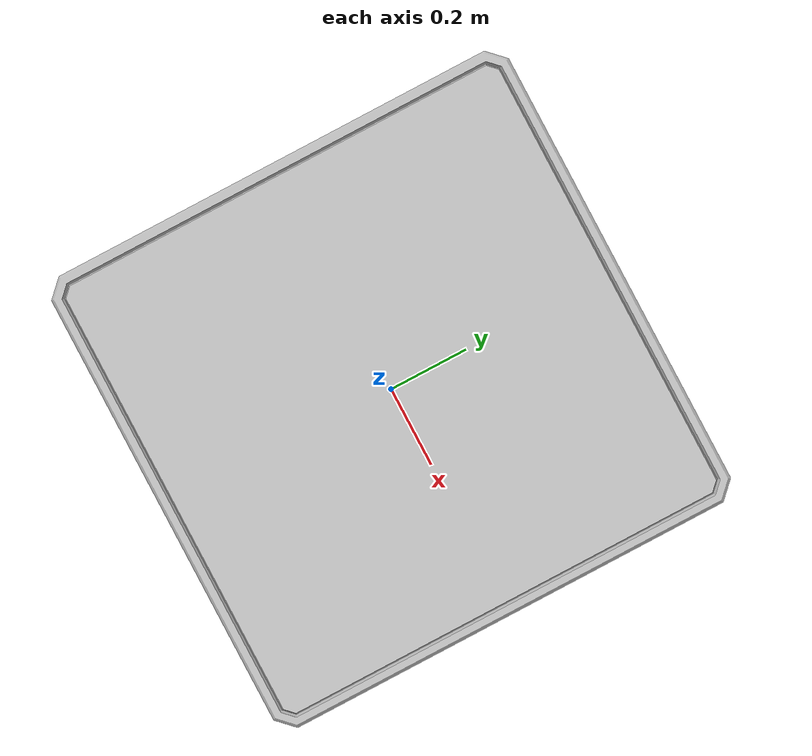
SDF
<?xml version="1.0" ?>
<sdf version="1.6">
  <model name="aws_robomaker_retail_BookshelfC_01">
    <link name="link">
      <inertial>
        <mass>50</mass>
        <inertia>
          <ixx>5.586498</ixx>
          <ixy>0</ixy>
          <ixz>0</ixz>
          <iyy>5.4732378</iyy>
          <iyz>0</iyz>
          <izz>6.232767</izz>
        </inertia>
      </inertial>
      <collision name="collision">
        <geometry>
          <mesh>
            <uri>file://models/aws_robomaker_retail_BookshelfC_01/meshes/aws_BookshelfC_01_collision.DAE</uri>
            <scale>1 1 1</scale>
          </mesh>
        </geometry>
      </collision>
      <visual name="visual">
	    <geometry>
          <mesh>
            <uri>file://models/aws_robomaker_retail_BookshelfC_01/meshes/aws_BookshelfC_01_visual.DAE</uri>
          </mesh>
        </geometry>
        <meta>
          <layer>1</layer>
        </meta>
      </visual>
    </link>
  <static>1</static>
  </model>
</sdf>
